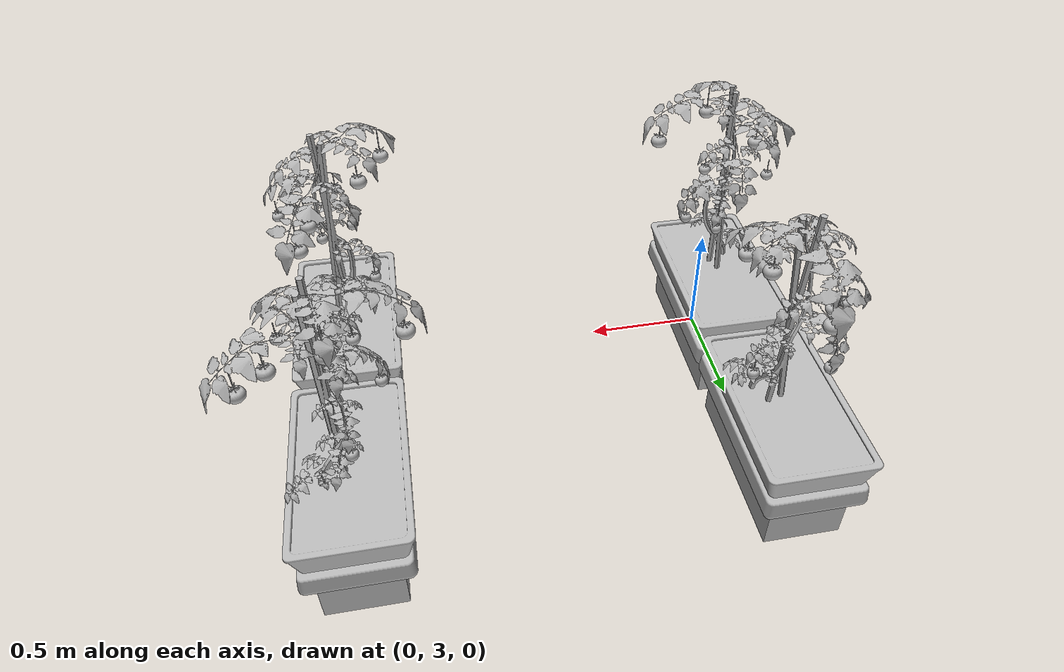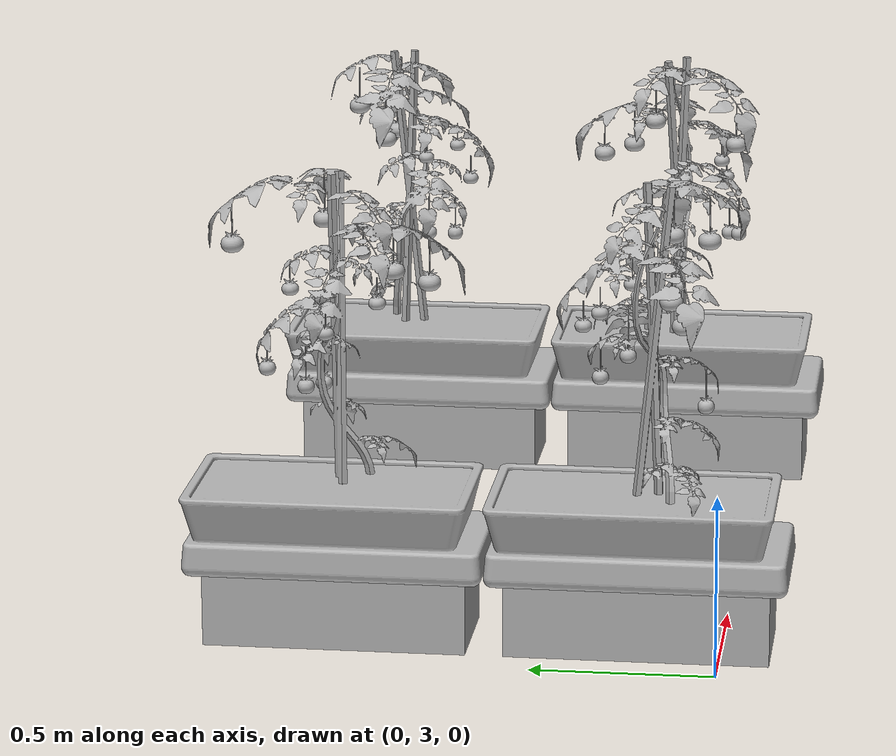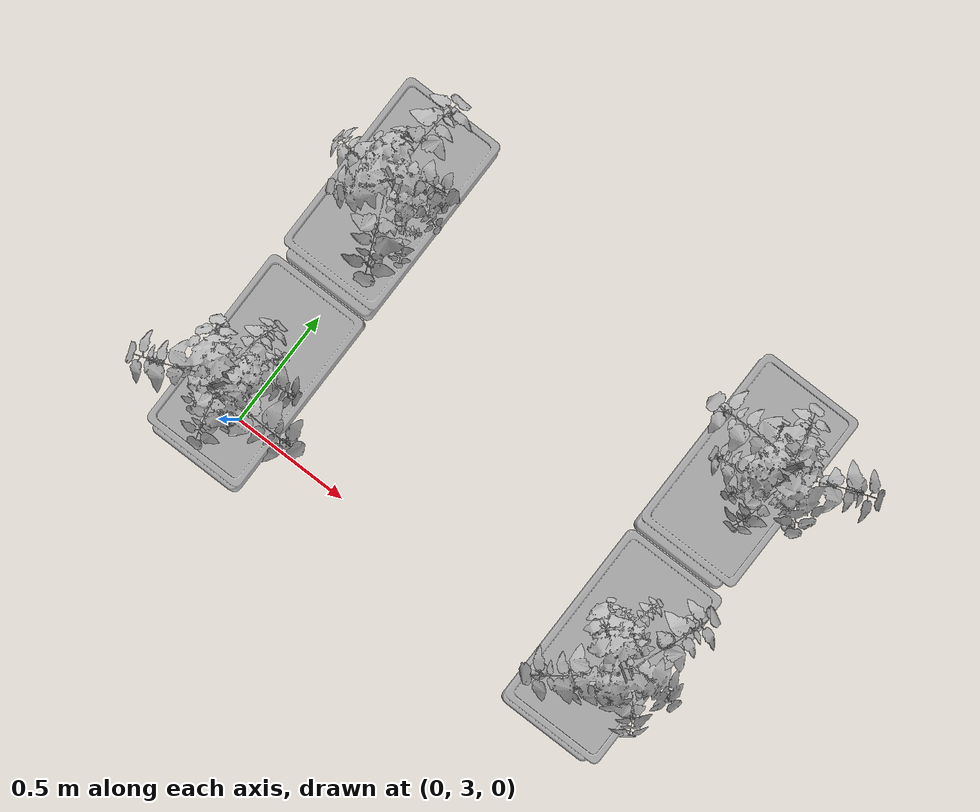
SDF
<sdf version="1.6">
 <world name="default">
  <model name="plant04">
   <static>0</static>
   <link name="tomato_plant_link">
    <inertial>
     <mass>20</mass>
     <inertia><ixx>1</ixx><ixy>0</ixy><ixz>0</ixz><iyy>1</iyy><iyz>0</iyz><izz>1</izz></inertia>
    </inertial>
    <visual name="visual">
     <geometry><mesh><uri>model://tomato_plant/meshes/tomato_plant.obj</uri></mesh></geometry>
    </visual>
    <collision name="collision">
     <pose>0 0 0.01 0 -0 0</pose>
     <geometry><cylinder><radius>0.2</radius><length>0.02</length></cylinder></geometry>
    </collision>
   </link>
   <link name="t_link_0">
    <pose>0.176111 0.046061 0.713729 0 -0 0</pose>
    <inertial>
     <mass>0.1</mass>
     <inertia><ixx>1</ixx><ixy>0</ixy><ixz>0</ixz><iyy>1</iyy><iyz>0</iyz><izz>1</izz></inertia>
    </inertial>
    <collision name="collision"><geometry><sphere><radius>0.02</radius></sphere></geometry></collision>
    <visual name="visual">
     <geometry><mesh><uri>model://green_tomato/meshes/green_tomato.obj</uri></mesh></geometry>
    </visual>
   </link>
   <joint name="t_joint_0" type="fixed">
    <parent>tomato_plant_link</parent>
    <child>t_link_0</child>
    <axis>
     <xyz>0 0 1</xyz>
     <use_parent_model_frame>1</use_parent_model_frame>
     <limit><lower>-1e+16</lower><upper>1e+16</upper></limit>
    </axis>
    <sensor name="force_torque" type="force_torque">
     <always_on>1</always_on>
     <update_rate>250</update_rate>
     <plugin name="breakable_0" filename="libBreakableJointPlugin.so">
      <breaking_force_N>20</breaking_force_N>
     </plugin>
    </sensor>
   </joint>
   <link name="t_link_1">
    <pose>0.063172 0.108629 0.685474 0 -0 0</pose>
    <inertial>
     <mass>0.1</mass>
     <inertia><ixx>1</ixx><ixy>0</ixy><ixz>0</ixz><iyy>1</iyy><iyz>0</iyz><izz>1</izz></inertia>
    </inertial>
    <collision name="collision"><geometry><sphere><radius>0.02</radius></sphere></geometry></collision>
    <visual name="visual">
     <geometry><mesh><uri>model://green_tomato/meshes/green_tomato.obj</uri></mesh></geometry>
    </visual>
   </link>
   <joint name="t_joint_1" type="fixed">
    <parent>tomato_plant_link</parent>
    <child>t_link_1</child>
    <axis>
     <xyz>0 0 1</xyz>
     <use_parent_model_frame>1</use_parent_model_frame>
     <limit><lower>-1e+16</lower><upper>1e+16</upper></limit>
    </axis>
    <sensor name="force_torque" type="force_torque">
     <always_on>1</always_on>
     <update_rate>250</update_rate>
     <plugin name="breakable_1" filename="libBreakableJointPlugin.so">
      <breaking_force_N>20</breaking_force_N>
     </plugin>
    </sensor>
   </joint>
   <link name="t_link_2">
    <pose>0.062027 -0.170581 0.614534 0 -0 0</pose>
    <inertial>
     <mass>0.1</mass>
     <inertia><ixx>1</ixx><ixy>0</ixy><ixz>0</ixz><iyy>1</iyy><iyz>0</iyz><izz>1</izz></inertia>
    </inertial>
    <collision name="collision"><geometry><sphere><radius>0.02</radius></sphere></geometry></collision>
    <visual name="visual">
     <geometry><mesh><uri>model://green_tomato/meshes/green_tomato.obj</uri></mesh></geometry>
    </visual>
   </link>
   <joint name="t_joint_2" type="fixed">
    <parent>tomato_plant_link</parent>
    <child>t_link_2</child>
    <axis>
     <xyz>0 0 1</xyz>
     <use_parent_model_frame>1</use_parent_model_frame>
     <limit><lower>-1e+16</lower><upper>1e+16</upper></limit>
    </axis>
    <sensor name="force_torque" type="force_torque">
     <always_on>1</always_on>
     <update_rate>250</update_rate>
     <plugin name="breakable_2" filename="libBreakableJointPlugin.so">
      <breaking_force_N>20</breaking_force_N>
     </plugin>
    </sensor>
   </joint>
   <link name="t_link_3">
    <pose>0.114746 0.0304 0.926457 0 -0 0</pose>
    <inertial>
     <mass>0.1</mass>
     <inertia><ixx>1</ixx><ixy>0</ixy><ixz>0</ixz><iyy>1</iyy><iyz>0</iyz><izz>1</izz></inertia>
    </inertial>
    <collision name="collision"><geometry><sphere><radius>0.02</radius></sphere></geometry></collision>
    <visual name="visual">
     <geometry><mesh><uri>model://yellow_tomato/meshes/yellow_tomato.obj</uri></mesh></geometry>
    </visual>
   </link>
   <joint name="t_joint_3" type="fixed">
    <parent>tomato_plant_link</parent>
    <child>t_link_3</child>
    <axis>
     <xyz>0 0 1</xyz>
     <use_parent_model_frame>1</use_parent_model_frame>
     <limit><lower>-1e+16</lower><upper>1e+16</upper></limit>
    </axis>
    <sensor name="force_torque" type="force_torque">
     <always_on>1</always_on>
     <update_rate>250</update_rate>
     <plugin name="breakable_3" filename="libBreakableJointPlugin.so">
      <breaking_force_N>20</breaking_force_N>
     </plugin>
    </sensor>
   </joint>
   <link name="t_link_4">
    <pose>0.003426 0.147925 0.840454 0 -0 0</pose>
    <inertial>
     <mass>0.1</mass>
     <inertia><ixx>1</ixx><ixy>0</ixy><ixz>0</ixz><iyy>1</iyy><iyz>0</iyz><izz>1</izz></inertia>
    </inertial>
    <collision name="collision"><geometry><sphere><radius>0.02</radius></sphere></geometry></collision>
    <visual name="visual">
     <geometry><mesh><uri>model://yellow_tomato/meshes/yellow_tomato.obj</uri></mesh></geometry>
    </visual>
   </link>
   <joint name="t_joint_4" type="fixed">
    <parent>tomato_plant_link</parent>
    <child>t_link_4</child>
    <axis>
     <xyz>0 0 1</xyz>
     <use_parent_model_frame>1</use_parent_model_frame>
     <limit><lower>-1e+16</lower><upper>1e+16</upper></limit>
    </axis>
    <sensor name="force_torque" type="force_torque">
     <always_on>1</always_on>
     <update_rate>250</update_rate>
     <plugin name="breakable_4" filename="libBreakableJointPlugin.so">
      <breaking_force_N>20</breaking_force_N>
     </plugin>
    </sensor>
   </joint>
   <link name="t_link_5">
    <pose>-0.12391 0.091553 0.91111 0 -0 0</pose>
    <inertial>
     <mass>0.1</mass>
     <inertia><ixx>1</ixx><ixy>0</ixy><ixz>0</ixz><iyy>1</iyy><iyz>0</iyz><izz>1</izz></inertia>
    </inertial>
    <collision name="collision"><geometry><sphere><radius>0.02</radius></sphere></geometry></collision>
    <visual name="visual">
     <geometry><mesh><uri>model://yellow_tomato/meshes/yellow_tomato.obj</uri></mesh></geometry>
    </visual>
   </link>
   <joint name="t_joint_5" type="fixed">
    <parent>tomato_plant_link</parent>
    <child>t_link_5</child>
    <axis>
     <xyz>0 0 1</xyz>
     <use_parent_model_frame>1</use_parent_model_frame>
     <limit><lower>-1e+16</lower><upper>1e+16</upper></limit>
    </axis>
    <sensor name="force_torque" type="force_torque">
     <always_on>1</always_on>
     <update_rate>250</update_rate>
     <plugin name="breakable_5" filename="libBreakableJointPlugin.so">
      <breaking_force_N>20</breaking_force_N>
     </plugin>
    </sensor>
   </joint>
   <link name="t_link_6">
    <pose>-0.23014 -0.132697 0.911579 0 -0 0</pose>
    <inertial>
     <mass>0.1</mass>
     <inertia><ixx>1</ixx><ixy>0</ixy><ixz>0</ixz><iyy>1</iyy><iyz>0</iyz><izz>1</izz></inertia>
    </inertial>
    <collision name="collision"><geometry><sphere><radius>0.03</radius></sphere></geometry></collision>
    <visual name="visual">
     <geometry><mesh><uri>model://red_tomato/meshes/red_tomato.obj</uri></mesh></geometry>
    </visual>
   </link>
   <joint name="t_joint_6" type="fixed">
    <parent>tomato_plant_link</parent>
    <child>t_link_6</child>
    <axis>
     <xyz>0 0 1</xyz>
     <use_parent_model_frame>1</use_parent_model_frame>
     <limit><lower>-1e+16</lower><upper>1e+16</upper></limit>
    </axis>
    <sensor name="force_torque" type="force_torque">
     <always_on>1</always_on>
     <update_rate>250</update_rate>
     <plugin name="breakable_6" filename="libBreakableJointPlugin.so">
      <breaking_force_N>20</breaking_force_N>
     </plugin>
    </sensor>
   </joint>
   <link name="t_link_7">
    <pose>-0.139776 -0.09326 0.950185 0 -0 0</pose>
    <inertial>
     <mass>0.1</mass>
     <inertia><ixx>1</ixx><ixy>0</ixy><ixz>0</ixz><iyy>1</iyy><iyz>0</iyz><izz>1</izz></inertia>
    </inertial>
    <collision name="collision"><geometry><sphere><radius>0.03</radius></sphere></geometry></collision>
    <visual name="visual">
     <geometry><mesh><uri>model://red_tomato/meshes/red_tomato.obj</uri></mesh></geometry>
    </visual>
   </link>
   <joint name="t_joint_7" type="fixed">
    <parent>tomato_plant_link</parent>
    <child>t_link_7</child>
    <axis>
     <xyz>0 0 1</xyz>
     <use_parent_model_frame>1</use_parent_model_frame>
     <limit><lower>-1e+16</lower><upper>1e+16</upper></limit>
    </axis>
    <sensor name="force_torque" type="force_torque">
     <always_on>1</always_on>
     <update_rate>250</update_rate>
     <plugin name="breakable_7" filename="libBreakableJointPlugin.so">
      <breaking_force_N>20</breaking_force_N>
     </plugin>
    </sensor>
   </joint>
   <link name="t_link_8">
    <pose>0.284181 -0.063758 1.01928 0 -0 0</pose>
    <inertial>
     <mass>0.1</mass>
     <inertia><ixx>1</ixx><ixy>0</ixy><ixz>0</ixz><iyy>1</iyy><iyz>0</iyz><izz>1</izz></inertia>
    </inertial>
    <collision name="collision"><geometry><sphere><radius>0.03</radius></sphere></geometry></collision>
    <visual name="visual">
     <geometry><mesh><uri>model://red_tomato/meshes/red_tomato.obj</uri></mesh></geometry>
    </visual>
   </link>
   <joint name="t_joint_8" type="fixed">
    <parent>tomato_plant_link</parent>
    <child>t_link_8</child>
    <axis>
     <xyz>0 0 1</xyz>
     <use_parent_model_frame>1</use_parent_model_frame>
     <limit><lower>-1e+16</lower><upper>1e+16</upper></limit>
    </axis>
    <sensor name="force_torque" type="force_torque">
     <always_on>1</always_on>
     <update_rate>250</update_rate>
     <plugin name="breakable_8" filename="libBreakableJointPlugin.so">
      <breaking_force_N>20</breaking_force_N>
     </plugin>
    </sensor>
   </joint>
   <link name="t_link_9">
    <pose>0.055319 -0.176349 1.06525 0 -0 0</pose>
    <inertial>
     <mass>0.1</mass>
     <inertia><ixx>1</ixx><ixy>0</ixy><ixz>0</ixz><iyy>1</iyy><iyz>0</iyz><izz>1</izz></inertia>
    </inertial>
    <collision name="collision"><geometry><sphere><radius>0.03</radius></sphere></geometry></collision>
    <visual name="visual">
     <geometry><mesh><uri>model://red_tomato/meshes/red_tomato.obj</uri></mesh></geometry>
    </visual>
   </link>
   <joint name="t_joint_9" type="fixed">
    <parent>tomato_plant_link</parent>
    <child>t_link_9</child>
    <axis>
     <xyz>0 0 1</xyz>
     <use_parent_model_frame>1</use_parent_model_frame>
     <limit><lower>-1e+16</lower><upper>1e+16</upper></limit>
    </axis>
    <sensor name="force_torque" type="force_torque">
     <always_on>1</always_on>
     <update_rate>250</update_rate>
     <plugin name="breakable_9" filename="libBreakableJointPlugin.so">
      <breaking_force_N>20</breaking_force_N>
     </plugin>
    </sensor>
   </joint>
   <pose>0.017402 3.20864 0.111767 -0.000983 0.00198 -0.000388</pose>
  </model>
  <model name="trough04">
   <static>1</static>
   <link name="trough_link">
    <visual name="visual"><geometry><mesh><uri>model://trough/meshes/truf.obj</uri></mesh></geometry></visual>
    <collision name="collision">
     <geometry><mesh><uri>model://trough/meshes/truf.obj</uri></mesh></geometry>
    </collision>
   </link>
   <link name="brick">
    <pose>0 -0.2 0 0 -0 0</pose>
    <visual name="visual"><geometry><mesh><uri>model://trough/meshes/brick.obj</uri></mesh></geometry></visual>
    <collision name="collision">
     <geometry><mesh><uri>model://trough/meshes/brick.obj</uri></mesh></geometry>
    </collision>
   </link>
   <pose>0 3.2 0.29 1.57 -0 1.57</pose>
  </model>
  <model name="plant05">
   <static>0</static>
   <link name="tomato_plant_link">
    <inertial>
     <mass>20</mass>
     <inertia><ixx>1</ixx><ixy>0</ixy><ixz>0</ixz><iyy>1</iyy><iyz>0</iyz><izz>1</izz></inertia>
    </inertial>
    <visual name="visual">
     <geometry><mesh><uri>model://tomato_plant/meshes/tomato_plant.obj</uri></mesh></geometry>
    </visual>
    <collision name="collision">
     <pose>0 0 0.01 0 -0 0</pose>
     <geometry><cylinder><radius>0.2</radius><length>0.02</length></cylinder></geometry>
    </collision>
   </link>
   <link name="t_link_0">
    <pose>0.176111 0.046061 0.713729 0 -0 0</pose>
    <inertial>
     <mass>0.1</mass>
     <inertia><ixx>1</ixx><ixy>0</ixy><ixz>0</ixz><iyy>1</iyy><iyz>0</iyz><izz>1</izz></inertia>
    </inertial>
    <collision name="collision"><geometry><sphere><radius>0.02</radius></sphere></geometry></collision>
    <visual name="visual">
     <geometry><mesh><uri>model://green_tomato/meshes/green_tomato.obj</uri></mesh></geometry>
    </visual>
   </link>
   <joint name="t_joint_0" type="fixed">
    <parent>tomato_plant_link</parent>
    <child>t_link_0</child>
    <axis>
     <xyz>0 0 1</xyz>
     <use_parent_model_frame>1</use_parent_model_frame>
     <limit><lower>-1e+16</lower><upper>1e+16</upper></limit>
    </axis>
    <sensor name="force_torque" type="force_torque">
     <always_on>1</always_on>
     <update_rate>250</update_rate>
     <plugin name="breakable_0" filename="libBreakableJointPlugin.so">
      <breaking_force_N>20</breaking_force_N>
     </plugin>
    </sensor>
   </joint>
   <link name="t_link_1">
    <pose>0.063172 0.108629 0.685474 0 -0 0</pose>
    <inertial>
     <mass>0.1</mass>
     <inertia><ixx>1</ixx><ixy>0</ixy><ixz>0</ixz><iyy>1</iyy><iyz>0</iyz><izz>1</izz></inertia>
    </inertial>
    <collision name="collision"><geometry><sphere><radius>0.02</radius></sphere></geometry></collision>
    <visual name="visual">
     <geometry><mesh><uri>model://green_tomato/meshes/green_tomato.obj</uri></mesh></geometry>
    </visual>
   </link>
   <joint name="t_joint_1" type="fixed">
    <parent>tomato_plant_link</parent>
    <child>t_link_1</child>
    <axis>
     <xyz>0 0 1</xyz>
     <use_parent_model_frame>1</use_parent_model_frame>
     <limit><lower>-1e+16</lower><upper>1e+16</upper></limit>
    </axis>
    <sensor name="force_torque" type="force_torque">
     <always_on>1</always_on>
     <update_rate>250</update_rate>
     <plugin name="breakable_1" filename="libBreakableJointPlugin.so">
      <breaking_force_N>20</breaking_force_N>
     </plugin>
    </sensor>
   </joint>
   <link name="t_link_2">
    <pose>0.062027 -0.170581 0.614534 0 -0 0</pose>
    <inertial>
     <mass>0.1</mass>
     <inertia><ixx>1</ixx><ixy>0</ixy><ixz>0</ixz><iyy>1</iyy><iyz>0</iyz><izz>1</izz></inertia>
    </inertial>
    <collision name="collision"><geometry><sphere><radius>0.02</radius></sphere></geometry></collision>
    <visual name="visual">
     <geometry><mesh><uri>model://green_tomato/meshes/green_tomato.obj</uri></mesh></geometry>
    </visual>
   </link>
   <joint name="t_joint_2" type="fixed">
    <parent>tomato_plant_link</parent>
    <child>t_link_2</child>
    <axis>
     <xyz>0 0 1</xyz>
     <use_parent_model_frame>1</use_parent_model_frame>
     <limit><lower>-1e+16</lower><upper>1e+16</upper></limit>
    </axis>
    <sensor name="force_torque" type="force_torque">
     <always_on>1</always_on>
     <update_rate>250</update_rate>
     <plugin name="breakable_2" filename="libBreakableJointPlugin.so">
      <breaking_force_N>20</breaking_force_N>
     </plugin>
    </sensor>
   </joint>
   <link name="t_link_3">
    <pose>0.114746 0.0304 0.926457 0 -0 0</pose>
    <inertial>
     <mass>0.1</mass>
     <inertia><ixx>1</ixx><ixy>0</ixy><ixz>0</ixz><iyy>1</iyy><iyz>0</iyz><izz>1</izz></inertia>
    </inertial>
    <collision name="collision"><geometry><sphere><radius>0.02</radius></sphere></geometry></collision>
    <visual name="visual">
     <geometry><mesh><uri>model://yellow_tomato/meshes/yellow_tomato.obj</uri></mesh></geometry>
    </visual>
   </link>
   <joint name="t_joint_3" type="fixed">
    <parent>tomato_plant_link</parent>
    <child>t_link_3</child>
    <axis>
     <xyz>0 0 1</xyz>
     <use_parent_model_frame>1</use_parent_model_frame>
     <limit><lower>-1e+16</lower><upper>1e+16</upper></limit>
    </axis>
    <sensor name="force_torque" type="force_torque">
     <always_on>1</always_on>
     <update_rate>250</update_rate>
     <plugin name="breakable_3" filename="libBreakableJointPlugin.so">
      <breaking_force_N>20</breaking_force_N>
     </plugin>
    </sensor>
   </joint>
   <link name="t_link_4">
    <pose>0.003426 0.147925 0.840454 0 -0 0</pose>
    <inertial>
     <mass>0.1</mass>
     <inertia><ixx>1</ixx><ixy>0</ixy><ixz>0</ixz><iyy>1</iyy><iyz>0</iyz><izz>1</izz></inertia>
    </inertial>
    <collision name="collision"><geometry><sphere><radius>0.02</radius></sphere></geometry></collision>
    <visual name="visual">
     <geometry><mesh><uri>model://yellow_tomato/meshes/yellow_tomato.obj</uri></mesh></geometry>
    </visual>
   </link>
   <joint name="t_joint_4" type="fixed">
    <parent>tomato_plant_link</parent>
    <child>t_link_4</child>
    <axis>
     <xyz>0 0 1</xyz>
     <use_parent_model_frame>1</use_parent_model_frame>
     <limit><lower>-1e+16</lower><upper>1e+16</upper></limit>
    </axis>
    <sensor name="force_torque" type="force_torque">
     <always_on>1</always_on>
     <update_rate>250</update_rate>
     <plugin name="breakable_4" filename="libBreakableJointPlugin.so">
      <breaking_force_N>20</breaking_force_N>
     </plugin>
    </sensor>
   </joint>
   <link name="t_link_5">
    <pose>-0.12391 0.091553 0.91111 0 -0 0</pose>
    <inertial>
     <mass>0.1</mass>
     <inertia><ixx>1</ixx><ixy>0</ixy><ixz>0</ixz><iyy>1</iyy><iyz>0</iyz><izz>1</izz></inertia>
    </inertial>
    <collision name="collision"><geometry><sphere><radius>0.02</radius></sphere></geometry></collision>
    <visual name="visual">
     <geometry><mesh><uri>model://yellow_tomato/meshes/yellow_tomato.obj</uri></mesh></geometry>
    </visual>
   </link>
   <joint name="t_joint_5" type="fixed">
    <parent>tomato_plant_link</parent>
    <child>t_link_5</child>
    <axis>
     <xyz>0 0 1</xyz>
     <use_parent_model_frame>1</use_parent_model_frame>
     <limit><lower>-1e+16</lower><upper>1e+16</upper></limit>
    </axis>
    <sensor name="force_torque" type="force_torque">
     <always_on>1</always_on>
     <update_rate>250</update_rate>
     <plugin name="breakable_5" filename="libBreakableJointPlugin.so">
      <breaking_force_N>20</breaking_force_N>
     </plugin>
    </sensor>
   </joint>
   <link name="t_link_6">
    <pose>-0.23014 -0.132697 0.911579 0 -0 0</pose>
    <inertial>
     <mass>0.1</mass>
     <inertia><ixx>1</ixx><ixy>0</ixy><ixz>0</ixz><iyy>1</iyy><iyz>0</iyz><izz>1</izz></inertia>
    </inertial>
    <collision name="collision"><geometry><sphere><radius>0.03</radius></sphere></geometry></collision>
    <visual name="visual">
     <geometry><mesh><uri>model://red_tomato/meshes/red_tomato.obj</uri></mesh></geometry>
    </visual>
   </link>
   <joint name="t_joint_6" type="fixed">
    <parent>tomato_plant_link</parent>
    <child>t_link_6</child>
    <axis>
     <xyz>0 0 1</xyz>
     <use_parent_model_frame>1</use_parent_model_frame>
     <limit><lower>-1e+16</lower><upper>1e+16</upper></limit>
    </axis>
    <sensor name="force_torque" type="force_torque">
     <always_on>1</always_on>
     <update_rate>250</update_rate>
     <plugin name="breakable_6" filename="libBreakableJointPlugin.so">
      <breaking_force_N>20</breaking_force_N>
     </plugin>
    </sensor>
   </joint>
   <link name="t_link_7">
    <pose>-0.139776 -0.09326 0.950185 0 -0 0</pose>
    <inertial>
     <mass>0.1</mass>
     <inertia><ixx>1</ixx><ixy>0</ixy><ixz>0</ixz><iyy>1</iyy><iyz>0</iyz><izz>1</izz></inertia>
    </inertial>
    <collision name="collision"><geometry><sphere><radius>0.03</radius></sphere></geometry></collision>
    <visual name="visual">
     <geometry><mesh><uri>model://red_tomato/meshes/red_tomato.obj</uri></mesh></geometry>
    </visual>
   </link>
   <joint name="t_joint_7" type="fixed">
    <parent>tomato_plant_link</parent>
    <child>t_link_7</child>
    <axis>
     <xyz>0 0 1</xyz>
     <use_parent_model_frame>1</use_parent_model_frame>
     <limit><lower>-1e+16</lower><upper>1e+16</upper></limit>
    </axis>
    <sensor name="force_torque" type="force_torque">
     <always_on>1</always_on>
     <update_rate>250</update_rate>
     <plugin name="breakable_7" filename="libBreakableJointPlugin.so">
      <breaking_force_N>20</breaking_force_N>
     </plugin>
    </sensor>
   </joint>
   <link name="t_link_8">
    <pose>0.284181 -0.063758 1.01928 0 -0 0</pose>
    <inertial>
     <mass>0.1</mass>
     <inertia><ixx>1</ixx><ixy>0</ixy><ixz>0</ixz><iyy>1</iyy><iyz>0</iyz><izz>1</izz></inertia>
    </inertial>
    <collision name="collision"><geometry><sphere><radius>0.03</radius></sphere></geometry></collision>
    <visual name="visual">
     <geometry><mesh><uri>model://red_tomato/meshes/red_tomato.obj</uri></mesh></geometry>
    </visual>
   </link>
   <joint name="t_joint_8" type="fixed">
    <parent>tomato_plant_link</parent>
    <child>t_link_8</child>
    <axis>
     <xyz>0 0 1</xyz>
     <use_parent_model_frame>1</use_parent_model_frame>
     <limit><lower>-1e+16</lower><upper>1e+16</upper></limit>
    </axis>
    <sensor name="force_torque" type="force_torque">
     <always_on>1</always_on>
     <update_rate>250</update_rate>
     <plugin name="breakable_8" filename="libBreakableJointPlugin.so">
      <breaking_force_N>20</breaking_force_N>
     </plugin>
    </sensor>
   </joint>
   <link name="t_link_9">
    <pose>0.055319 -0.176349 1.06525 0 -0 0</pose>
    <inertial>
     <mass>0.1</mass>
     <inertia><ixx>1</ixx><ixy>0</ixy><ixz>0</ixz><iyy>1</iyy><iyz>0</iyz><izz>1</izz></inertia>
    </inertial>
    <collision name="collision"><geometry><sphere><radius>0.03</radius></sphere></geometry></collision>
    <visual name="visual">
     <geometry><mesh><uri>model://red_tomato/meshes/red_tomato.obj</uri></mesh></geometry>
    </visual>
   </link>
   <joint name="t_joint_9" type="fixed">
    <parent>tomato_plant_link</parent>
    <child>t_link_9</child>
    <axis>
     <xyz>0 0 1</xyz>
     <use_parent_model_frame>1</use_parent_model_frame>
     <limit><lower>-1e+16</lower><upper>1e+16</upper></limit>
    </axis>
    <sensor name="force_torque" type="force_torque">
     <always_on>1</always_on>
     <update_rate>250</update_rate>
     <plugin name="breakable_9" filename="libBreakableJointPlugin.so">
      <breaking_force_N>20</breaking_force_N>
     </plugin>
    </sensor>
   </joint>
   <pose>0.01742 4.00871 0.111062 0.001503 0.000793 1.56998</pose>
  </model>
  <model name="trough05">
   <static>1</static>
   <link name="trough_link">
    <visual name="visual"><geometry><mesh><uri>model://trough/meshes/truf.obj</uri></mesh></geometry></visual>
    <collision name="collision">
     <geometry><mesh><uri>model://trough/meshes/truf.obj</uri></mesh></geometry>
    </collision>
   </link>
   <link name="brick">
    <pose>0 -0.2 0 0 -0 0</pose>
    <visual name="visual"><geometry><mesh><uri>model://trough/meshes/brick.obj</uri></mesh></geometry></visual>
    <collision name="collision">
     <geometry><mesh><uri>model://trough/meshes/brick.obj</uri></mesh></geometry>
    </collision>
   </link>
   <pose>0 4 0.29 1.57 -0 1.57</pose>
  </model>
  <model name="plant14">
   <static>0</static>
   <link name="tomato_plant_link">
    <inertial>
     <mass>20</mass>
     <inertia><ixx>1</ixx><ixy>0</ixy><ixz>0</ixz><iyy>1</iyy><iyz>0</iyz><izz>1</izz></inertia>
    </inertial>
    <visual name="visual">
     <geometry><mesh><uri>model://tomato_plant/meshes/tomato_plant.obj</uri></mesh></geometry>
    </visual>
    <collision name="collision">
     <pose>0 0 0.01 0 -0 0</pose>
     <geometry><cylinder><radius>0.2</radius><length>0.02</length></cylinder></geometry>
    </collision>
   </link>
   <link name="t_link_0">
    <pose>0.176111 0.046061 0.713729 0 -0 0</pose>
    <inertial>
     <mass>0.1</mass>
     <inertia><ixx>1</ixx><ixy>0</ixy><ixz>0</ixz><iyy>1</iyy><iyz>0</iyz><izz>1</izz></inertia>
    </inertial>
    <collision name="collision"><geometry><sphere><radius>0.02</radius></sphere></geometry></collision>
    <visual name="visual">
     <geometry><mesh><uri>model://green_tomato/meshes/green_tomato.obj</uri></mesh></geometry>
    </visual>
   </link>
   <joint name="t_joint_0" type="fixed">
    <parent>tomato_plant_link</parent>
    <child>t_link_0</child>
    <axis>
     <xyz>0 0 1</xyz>
     <use_parent_model_frame>1</use_parent_model_frame>
     <limit><lower>-1e+16</lower><upper>1e+16</upper></limit>
    </axis>
    <sensor name="force_torque" type="force_torque">
     <always_on>1</always_on>
     <update_rate>250</update_rate>
     <plugin name="breakable_0" filename="libBreakableJointPlugin.so">
      <breaking_force_N>20</breaking_force_N>
     </plugin>
    </sensor>
   </joint>
   <link name="t_link_1">
    <pose>0.063172 0.108629 0.685474 0 -0 0</pose>
    <inertial>
     <mass>0.1</mass>
     <inertia><ixx>1</ixx><ixy>0</ixy><ixz>0</ixz><iyy>1</iyy><iyz>0</iyz><izz>1</izz></inertia>
    </inertial>
    <collision name="collision"><geometry><sphere><radius>0.02</radius></sphere></geometry></collision>
    <visual name="visual">
     <geometry><mesh><uri>model://green_tomato/meshes/green_tomato.obj</uri></mesh></geometry>
    </visual>
   </link>
   <joint name="t_joint_1" type="fixed">
    <parent>tomato_plant_link</parent>
    <child>t_link_1</child>
    <axis>
     <xyz>0 0 1</xyz>
     <use_parent_model_frame>1</use_parent_model_frame>
     <limit><lower>-1e+16</lower><upper>1e+16</upper></limit>
    </axis>
    <sensor name="force_torque" type="force_torque">
     <always_on>1</always_on>
     <update_rate>250</update_rate>
     <plugin name="breakable_1" filename="libBreakableJointPlugin.so">
      <breaking_force_N>20</breaking_force_N>
     </plugin>
    </sensor>
   </joint>
   <link name="t_link_2">
    <pose>0.062027 -0.170581 0.614534 0 -0 0</pose>
    <inertial>
     <mass>0.1</mass>
     <inertia><ixx>1</ixx><ixy>0</ixy><ixz>0</ixz><iyy>1</iyy><iyz>0</iyz><izz>1</izz></inertia>
    </inertial>
    <collision name="collision"><geometry><sphere><radius>0.02</radius></sphere></geometry></collision>
    <visual name="visual">
     <geometry><mesh><uri>model://green_tomato/meshes/green_tomato.obj</uri></mesh></geometry>
    </visual>
   </link>
   <joint name="t_joint_2" type="fixed">
    <parent>tomato_plant_link</parent>
    <child>t_link_2</child>
    <axis>
     <xyz>0 0 1</xyz>
     <use_parent_model_frame>1</use_parent_model_frame>
     <limit><lower>-1e+16</lower><upper>1e+16</upper></limit>
    </axis>
    <sensor name="force_torque" type="force_torque">
     <always_on>1</always_on>
     <update_rate>250</update_rate>
     <plugin name="breakable_2" filename="libBreakableJointPlugin.so">
      <breaking_force_N>20</breaking_force_N>
     </plugin>
    </sensor>
   </joint>
   <link name="t_link_3">
    <pose>0.114746 0.0304 0.926457 0 -0 0</pose>
    <inertial>
     <mass>0.1</mass>
     <inertia><ixx>1</ixx><ixy>0</ixy><ixz>0</ixz><iyy>1</iyy><iyz>0</iyz><izz>1</izz></inertia>
    </inertial>
    <collision name="collision"><geometry><sphere><radius>0.02</radius></sphere></geometry></collision>
    <visual name="visual">
     <geometry><mesh><uri>model://yellow_tomato/meshes/yellow_tomato.obj</uri></mesh></geometry>
    </visual>
   </link>
   <joint name="t_joint_3" type="fixed">
    <parent>tomato_plant_link</parent>
    <child>t_link_3</child>
    <axis>
     <xyz>0 0 1</xyz>
     <use_parent_model_frame>1</use_parent_model_frame>
     <limit><lower>-1e+16</lower><upper>1e+16</upper></limit>
    </axis>
    <sensor name="force_torque" type="force_torque">
     <always_on>1</always_on>
     <update_rate>250</update_rate>
     <plugin name="breakable_3" filename="libBreakableJointPlugin.so">
      <breaking_force_N>20</breaking_force_N>
     </plugin>
    </sensor>
   </joint>
   <link name="t_link_4">
    <pose>0.003426 0.147925 0.840454 0 -0 0</pose>
    <inertial>
     <mass>0.1</mass>
     <inertia><ixx>1</ixx><ixy>0</ixy><ixz>0</ixz><iyy>1</iyy><iyz>0</iyz><izz>1</izz></inertia>
    </inertial>
    <collision name="collision"><geometry><sphere><radius>0.02</radius></sphere></geometry></collision>
    <visual name="visual">
     <geometry><mesh><uri>model://yellow_tomato/meshes/yellow_tomato.obj</uri></mesh></geometry>
    </visual>
   </link>
   <joint name="t_joint_4" type="fixed">
    <parent>tomato_plant_link</parent>
    <child>t_link_4</child>
    <axis>
     <xyz>0 0 1</xyz>
     <use_parent_model_frame>1</use_parent_model_frame>
     <limit><lower>-1e+16</lower><upper>1e+16</upper></limit>
    </axis>
    <sensor name="force_torque" type="force_torque">
     <always_on>1</always_on>
     <update_rate>250</update_rate>
     <plugin name="breakable_4" filename="libBreakableJointPlugin.so">
      <breaking_force_N>20</breaking_force_N>
     </plugin>
    </sensor>
   </joint>
   <link name="t_link_5">
    <pose>-0.12391 0.091553 0.91111 0 -0 0</pose>
    <inertial>
     <mass>0.1</mass>
     <inertia><ixx>1</ixx><ixy>0</ixy><ixz>0</ixz><iyy>1</iyy><iyz>0</iyz><izz>1</izz></inertia>
    </inertial>
    <collision name="collision"><geometry><sphere><radius>0.02</radius></sphere></geometry></collision>
    <visual name="visual">
     <geometry><mesh><uri>model://yellow_tomato/meshes/yellow_tomato.obj</uri></mesh></geometry>
    </visual>
   </link>
   <joint name="t_joint_5" type="fixed">
    <parent>tomato_plant_link</parent>
    <child>t_link_5</child>
    <axis>
     <xyz>0 0 1</xyz>
     <use_parent_model_frame>1</use_parent_model_frame>
     <limit><lower>-1e+16</lower><upper>1e+16</upper></limit>
    </axis>
    <sensor name="force_torque" type="force_torque">
     <always_on>1</always_on>
     <update_rate>250</update_rate>
     <plugin name="breakable_5" filename="libBreakableJointPlugin.so">
      <breaking_force_N>20</breaking_force_N>
     </plugin>
    </sensor>
   </joint>
   <link name="t_link_6">
    <pose>-0.23014 -0.132697 0.911579 0 -0 0</pose>
    <inertial>
     <mass>0.1</mass>
     <inertia><ixx>1</ixx><ixy>0</ixy><ixz>0</ixz><iyy>1</iyy><iyz>0</iyz><izz>1</izz></inertia>
    </inertial>
    <collision name="collision"><geometry><sphere><radius>0.03</radius></sphere></geometry></collision>
    <visual name="visual">
     <geometry><mesh><uri>model://red_tomato/meshes/red_tomato.obj</uri></mesh></geometry>
    </visual>
   </link>
   <joint name="t_joint_6" type="fixed">
    <parent>tomato_plant_link</parent>
    <child>t_link_6</child>
    <axis>
     <xyz>0 0 1</xyz>
     <use_parent_model_frame>1</use_parent_model_frame>
     <limit><lower>-1e+16</lower><upper>1e+16</upper></limit>
    </axis>
    <sensor name="force_torque" type="force_torque">
     <always_on>1</always_on>
     <update_rate>250</update_rate>
     <plugin name="breakable_6" filename="libBreakableJointPlugin.so">
      <breaking_force_N>20</breaking_force_N>
     </plugin>
    </sensor>
   </joint>
   <link name="t_link_7">
    <pose>-0.139776 -0.09326 0.950185 0 -0 0</pose>
    <inertial>
     <mass>0.1</mass>
     <inertia><ixx>1</ixx><ixy>0</ixy><ixz>0</ixz><iyy>1</iyy><iyz>0</iyz><izz>1</izz></inertia>
    </inertial>
    <collision name="collision"><geometry><sphere><radius>0.03</radius></sphere></geometry></collision>
    <visual name="visual">
     <geometry><mesh><uri>model://red_tomato/meshes/red_tomato.obj</uri></mesh></geometry>
    </visual>
   </link>
   <joint name="t_joint_7" type="fixed">
    <parent>tomato_plant_link</parent>
    <child>t_link_7</child>
    <axis>
     <xyz>0 0 1</xyz>
     <use_parent_model_frame>1</use_parent_model_frame>
     <limit><lower>-1e+16</lower><upper>1e+16</upper></limit>
    </axis>
    <sensor name="force_torque" type="force_torque">
     <always_on>1</always_on>
     <update_rate>250</update_rate>
     <plugin name="breakable_7" filename="libBreakableJointPlugin.so">
      <breaking_force_N>20</breaking_force_N>
     </plugin>
    </sensor>
   </joint>
   <link name="t_link_8">
    <pose>0.284181 -0.063758 1.01928 0 -0 0</pose>
    <inertial>
     <mass>0.1</mass>
     <inertia><ixx>1</ixx><ixy>0</ixy><ixz>0</ixz><iyy>1</iyy><iyz>0</iyz><izz>1</izz></inertia>
    </inertial>
    <collision name="collision"><geometry><sphere><radius>0.03</radius></sphere></geometry></collision>
    <visual name="visual">
     <geometry><mesh><uri>model://red_tomato/meshes/red_tomato.obj</uri></mesh></geometry>
    </visual>
   </link>
   <joint name="t_joint_8" type="fixed">
    <parent>tomato_plant_link</parent>
    <child>t_link_8</child>
    <axis>
     <xyz>0 0 1</xyz>
     <use_parent_model_frame>1</use_parent_model_frame>
     <limit><lower>-1e+16</lower><upper>1e+16</upper></limit>
    </axis>
    <sensor name="force_torque" type="force_torque">
     <always_on>1</always_on>
     <update_rate>250</update_rate>
     <plugin name="breakable_8" filename="libBreakableJointPlugin.so">
      <breaking_force_N>20</breaking_force_N>
     </plugin>
    </sensor>
   </joint>
   <link name="t_link_9">
    <pose>0.055319 -0.176349 1.06525 0 -0 0</pose>
    <inertial>
     <mass>0.1</mass>
     <inertia><ixx>1</ixx><ixy>0</ixy><ixz>0</ixz><iyy>1</iyy><iyz>0</iyz><izz>1</izz></inertia>
    </inertial>
    <collision name="collision"><geometry><sphere><radius>0.03</radius></sphere></geometry></collision>
    <visual name="visual">
     <geometry><mesh><uri>model://red_tomato/meshes/red_tomato.obj</uri></mesh></geometry>
    </visual>
   </link>
   <joint name="t_joint_9" type="fixed">
    <parent>tomato_plant_link</parent>
    <child>t_link_9</child>
    <axis>
     <xyz>0 0 1</xyz>
     <use_parent_model_frame>1</use_parent_model_frame>
     <limit><lower>-1e+16</lower><upper>1e+16</upper></limit>
    </axis>
    <sensor name="force_torque" type="force_torque">
     <always_on>1</always_on>
     <update_rate>250</update_rate>
     <plugin name="breakable_9" filename="libBreakableJointPlugin.so">
      <breaking_force_N>20</breaking_force_N>
     </plugin>
    </sensor>
   </joint>
   <pose>1.63726 3.20863 0.109134 -0.000658 -0.001825 -2.35321</pose>
  </model>
  <model name="trough14">
   <static>1</static>
   <link name="trough_link">
    <visual name="visual"><geometry><mesh><uri>model://trough/meshes/truf.obj</uri></mesh></geometry></visual>
    <collision name="collision">
     <geometry><mesh><uri>model://trough/meshes/truf.obj</uri></mesh></geometry>
    </collision>
   </link>
   <link name="brick">
    <pose>0 -0.2 0 0 -0 0</pose>
    <visual name="visual"><geometry><mesh><uri>model://trough/meshes/brick.obj</uri></mesh></geometry></visual>
    <collision name="collision">
     <geometry><mesh><uri>model://trough/meshes/brick.obj</uri></mesh></geometry>
    </collision>
   </link>
   <pose>1.62 3.2 0.29 1.57 -0 1.57</pose>
  </model>
  <model name="plant15">
   <static>0</static>
   <link name="tomato_plant_link">
    <inertial>
     <mass>20</mass>
     <inertia><ixx>1</ixx><ixy>0</ixy><ixz>0</ixz><iyy>1</iyy><iyz>0</iyz><izz>1</izz></inertia>
    </inertial>
    <visual name="visual">
     <geometry><mesh><uri>model://tomato_plant/meshes/tomato_plant.obj</uri></mesh></geometry>
    </visual>
    <collision name="collision">
     <pose>0 0 0.01 0 -0 0</pose>
     <geometry><cylinder><radius>0.2</radius><length>0.02</length></cylinder></geometry>
    </collision>
   </link>
   <link name="t_link_0">
    <pose>0.176111 0.046061 0.713729 0 -0 0</pose>
    <inertial>
     <mass>0.1</mass>
     <inertia><ixx>1</ixx><ixy>0</ixy><ixz>0</ixz><iyy>1</iyy><iyz>0</iyz><izz>1</izz></inertia>
    </inertial>
    <collision name="collision"><geometry><sphere><radius>0.02</radius></sphere></geometry></collision>
    <visual name="visual">
     <geometry><mesh><uri>model://green_tomato/meshes/green_tomato.obj</uri></mesh></geometry>
    </visual>
   </link>
   <joint name="t_joint_0" type="fixed">
    <parent>tomato_plant_link</parent>
    <child>t_link_0</child>
    <axis>
     <xyz>0 0 1</xyz>
     <use_parent_model_frame>1</use_parent_model_frame>
     <limit><lower>-1e+16</lower><upper>1e+16</upper></limit>
    </axis>
    <sensor name="force_torque" type="force_torque">
     <always_on>1</always_on>
     <update_rate>250</update_rate>
     <plugin name="breakable_0" filename="libBreakableJointPlugin.so">
      <breaking_force_N>20</breaking_force_N>
     </plugin>
    </sensor>
   </joint>
   <link name="t_link_1">
    <pose>0.063172 0.108629 0.685474 0 -0 0</pose>
    <inertial>
     <mass>0.1</mass>
     <inertia><ixx>1</ixx><ixy>0</ixy><ixz>0</ixz><iyy>1</iyy><iyz>0</iyz><izz>1</izz></inertia>
    </inertial>
    <collision name="collision"><geometry><sphere><radius>0.02</radius></sphere></geometry></collision>
    <visual name="visual">
     <geometry><mesh><uri>model://green_tomato/meshes/green_tomato.obj</uri></mesh></geometry>
    </visual>
   </link>
   <joint name="t_joint_1" type="fixed">
    <parent>tomato_plant_link</parent>
    <child>t_link_1</child>
    <axis>
     <xyz>0 0 1</xyz>
     <use_parent_model_frame>1</use_parent_model_frame>
     <limit><lower>-1e+16</lower><upper>1e+16</upper></limit>
    </axis>
    <sensor name="force_torque" type="force_torque">
     <always_on>1</always_on>
     <update_rate>250</update_rate>
     <plugin name="breakable_1" filename="libBreakableJointPlugin.so">
      <breaking_force_N>20</breaking_force_N>
     </plugin>
    </sensor>
   </joint>
   <link name="t_link_2">
    <pose>0.062027 -0.170581 0.614534 0 -0 0</pose>
    <inertial>
     <mass>0.1</mass>
     <inertia><ixx>1</ixx><ixy>0</ixy><ixz>0</ixz><iyy>1</iyy><iyz>0</iyz><izz>1</izz></inertia>
    </inertial>
    <collision name="collision"><geometry><sphere><radius>0.02</radius></sphere></geometry></collision>
    <visual name="visual">
     <geometry><mesh><uri>model://green_tomato/meshes/green_tomato.obj</uri></mesh></geometry>
    </visual>
   </link>
   <joint name="t_joint_2" type="fixed">
    <parent>tomato_plant_link</parent>
    <child>t_link_2</child>
    <axis>
     <xyz>0 0 1</xyz>
     <use_parent_model_frame>1</use_parent_model_frame>
     <limit><lower>-1e+16</lower><upper>1e+16</upper></limit>
    </axis>
    <sensor name="force_torque" type="force_torque">
     <always_on>1</always_on>
     <update_rate>250</update_rate>
     <plugin name="breakable_2" filename="libBreakableJointPlugin.so">
      <breaking_force_N>20</breaking_force_N>
     </plugin>
    </sensor>
   </joint>
   <link name="t_link_3">
    <pose>0.114746 0.0304 0.926457 0 -0 0</pose>
    <inertial>
     <mass>0.1</mass>
     <inertia><ixx>1</ixx><ixy>0</ixy><ixz>0</ixz><iyy>1</iyy><iyz>0</iyz><izz>1</izz></inertia>
    </inertial>
    <collision name="collision"><geometry><sphere><radius>0.02</radius></sphere></geometry></collision>
    <visual name="visual">
     <geometry><mesh><uri>model://yellow_tomato/meshes/yellow_tomato.obj</uri></mesh></geometry>
    </visual>
   </link>
   <joint name="t_joint_3" type="fixed">
    <parent>tomato_plant_link</parent>
    <child>t_link_3</child>
    <axis>
     <xyz>0 0 1</xyz>
     <use_parent_model_frame>1</use_parent_model_frame>
     <limit><lower>-1e+16</lower><upper>1e+16</upper></limit>
    </axis>
    <sensor name="force_torque" type="force_torque">
     <always_on>1</always_on>
     <update_rate>250</update_rate>
     <plugin name="breakable_3" filename="libBreakableJointPlugin.so">
      <breaking_force_N>20</breaking_force_N>
     </plugin>
    </sensor>
   </joint>
   <link name="t_link_4">
    <pose>0.003426 0.147925 0.840454 0 -0 0</pose>
    <inertial>
     <mass>0.1</mass>
     <inertia><ixx>1</ixx><ixy>0</ixy><ixz>0</ixz><iyy>1</iyy><iyz>0</iyz><izz>1</izz></inertia>
    </inertial>
    <collision name="collision"><geometry><sphere><radius>0.02</radius></sphere></geometry></collision>
    <visual name="visual">
     <geometry><mesh><uri>model://yellow_tomato/meshes/yellow_tomato.obj</uri></mesh></geometry>
    </visual>
   </link>
   <joint name="t_joint_4" type="fixed">
    <parent>tomato_plant_link</parent>
    <child>t_link_4</child>
    <axis>
     <xyz>0 0 1</xyz>
     <use_parent_model_frame>1</use_parent_model_frame>
     <limit><lower>-1e+16</lower><upper>1e+16</upper></limit>
    </axis>
    <sensor name="force_torque" type="force_torque">
     <always_on>1</always_on>
     <update_rate>250</update_rate>
     <plugin name="breakable_4" filename="libBreakableJointPlugin.so">
      <breaking_force_N>20</breaking_force_N>
     </plugin>
    </sensor>
   </joint>
   <link name="t_link_5">
    <pose>-0.12391 0.091553 0.91111 0 -0 0</pose>
    <inertial>
     <mass>0.1</mass>
     <inertia><ixx>1</ixx><ixy>0</ixy><ixz>0</ixz><iyy>1</iyy><iyz>0</iyz><izz>1</izz></inertia>
    </inertial>
    <collision name="collision"><geometry><sphere><radius>0.02</radius></sphere></geometry></collision>
    <visual name="visual">
     <geometry><mesh><uri>model://yellow_tomato/meshes/yellow_tomato.obj</uri></mesh></geometry>
    </visual>
   </link>
   <joint name="t_joint_5" type="fixed">
    <parent>tomato_plant_link</parent>
    <child>t_link_5</child>
    <axis>
     <xyz>0 0 1</xyz>
     <use_parent_model_frame>1</use_parent_model_frame>
     <limit><lower>-1e+16</lower><upper>1e+16</upper></limit>
    </axis>
    <sensor name="force_torque" type="force_torque">
     <always_on>1</always_on>
     <update_rate>250</update_rate>
     <plugin name="breakable_5" filename="libBreakableJointPlugin.so">
      <breaking_force_N>20</breaking_force_N>
     </plugin>
    </sensor>
   </joint>
   <link name="t_link_6">
    <pose>-0.23014 -0.132697 0.911579 0 -0 0</pose>
    <inertial>
     <mass>0.1</mass>
     <inertia><ixx>1</ixx><ixy>0</ixy><ixz>0</ixz><iyy>1</iyy><iyz>0</iyz><izz>1</izz></inertia>
    </inertial>
    <collision name="collision"><geometry><sphere><radius>0.03</radius></sphere></geometry></collision>
    <visual name="visual">
     <geometry><mesh><uri>model://red_tomato/meshes/red_tomato.obj</uri></mesh></geometry>
    </visual>
   </link>
   <joint name="t_joint_6" type="fixed">
    <parent>tomato_plant_link</parent>
    <child>t_link_6</child>
    <axis>
     <xyz>0 0 1</xyz>
     <use_parent_model_frame>1</use_parent_model_frame>
     <limit><lower>-1e+16</lower><upper>1e+16</upper></limit>
    </axis>
    <sensor name="force_torque" type="force_torque">
     <always_on>1</always_on>
     <update_rate>250</update_rate>
     <plugin name="breakable_6" filename="libBreakableJointPlugin.so">
      <breaking_force_N>20</breaking_force_N>
     </plugin>
    </sensor>
   </joint>
   <link name="t_link_7">
    <pose>-0.139776 -0.09326 0.950185 0 -0 0</pose>
    <inertial>
     <mass>0.1</mass>
     <inertia><ixx>1</ixx><ixy>0</ixy><ixz>0</ixz><iyy>1</iyy><iyz>0</iyz><izz>1</izz></inertia>
    </inertial>
    <collision name="collision"><geometry><sphere><radius>0.03</radius></sphere></geometry></collision>
    <visual name="visual">
     <geometry><mesh><uri>model://red_tomato/meshes/red_tomato.obj</uri></mesh></geometry>
    </visual>
   </link>
   <joint name="t_joint_7" type="fixed">
    <parent>tomato_plant_link</parent>
    <child>t_link_7</child>
    <axis>
     <xyz>0 0 1</xyz>
     <use_parent_model_frame>1</use_parent_model_frame>
     <limit><lower>-1e+16</lower><upper>1e+16</upper></limit>
    </axis>
    <sensor name="force_torque" type="force_torque">
     <always_on>1</always_on>
     <update_rate>250</update_rate>
     <plugin name="breakable_7" filename="libBreakableJointPlugin.so">
      <breaking_force_N>20</breaking_force_N>
     </plugin>
    </sensor>
   </joint>
   <link name="t_link_8">
    <pose>0.284181 -0.063758 1.01928 0 -0 0</pose>
    <inertial>
     <mass>0.1</mass>
     <inertia><ixx>1</ixx><ixy>0</ixy><ixz>0</ixz><iyy>1</iyy><iyz>0</iyz><izz>1</izz></inertia>
    </inertial>
    <collision name="collision"><geometry><sphere><radius>0.03</radius></sphere></geometry></collision>
    <visual name="visual">
     <geometry><mesh><uri>model://red_tomato/meshes/red_tomato.obj</uri></mesh></geometry>
    </visual>
   </link>
   <joint name="t_joint_8" type="fixed">
    <parent>tomato_plant_link</parent>
    <child>t_link_8</child>
    <axis>
     <xyz>0 0 1</xyz>
     <use_parent_model_frame>1</use_parent_model_frame>
     <limit><lower>-1e+16</lower><upper>1e+16</upper></limit>
    </axis>
    <sensor name="force_torque" type="force_torque">
     <always_on>1</always_on>
     <update_rate>250</update_rate>
     <plugin name="breakable_8" filename="libBreakableJointPlugin.so">
      <breaking_force_N>20</breaking_force_N>
     </plugin>
    </sensor>
   </joint>
   <link name="t_link_9">
    <pose>0.055319 -0.176349 1.06525 0 -0 0</pose>
    <inertial>
     <mass>0.1</mass>
     <inertia><ixx>1</ixx><ixy>0</ixy><ixz>0</ixz><iyy>1</iyy><iyz>0</iyz><izz>1</izz></inertia>
    </inertial>
    <collision name="collision"><geometry><sphere><radius>0.03</radius></sphere></geometry></collision>
    <visual name="visual">
     <geometry><mesh><uri>model://red_tomato/meshes/red_tomato.obj</uri></mesh></geometry>
    </visual>
   </link>
   <joint name="t_joint_9" type="fixed">
    <parent>tomato_plant_link</parent>
    <child>t_link_9</child>
    <axis>
     <xyz>0 0 1</xyz>
     <use_parent_model_frame>1</use_parent_model_frame>
     <limit><lower>-1e+16</lower><upper>1e+16</upper></limit>
    </axis>
    <sensor name="force_torque" type="force_torque">
     <always_on>1</always_on>
     <update_rate>250</update_rate>
     <plugin name="breakable_9" filename="libBreakableJointPlugin.so">
      <breaking_force_N>20</breaking_force_N>
     </plugin>
    </sensor>
   </joint>
   <pose>1.63697 4.00882 0.108636 0.000665 -0.001353 3.14</pose>
  </model>
  <model name="trough15">
   <static>1</static>
   <link name="trough_link">
    <visual name="visual"><geometry><mesh><uri>model://trough/meshes/truf.obj</uri></mesh></geometry></visual>
    <collision name="collision">
     <geometry><mesh><uri>model://trough/meshes/truf.obj</uri></mesh></geometry>
    </collision>
   </link>
   <link name="brick">
    <pose>0 -0.2 0 0 -0 0</pose>
    <visual name="visual"><geometry><mesh><uri>model://trough/meshes/brick.obj</uri></mesh></geometry></visual>
    <collision name="collision">
     <geometry><mesh><uri>model://trough/meshes/brick.obj</uri></mesh></geometry>
    </collision>
   </link>
   <pose>1.62 4 0.29 1.57 -0 1.57</pose>
  </model>
 </world>
</sdf>
